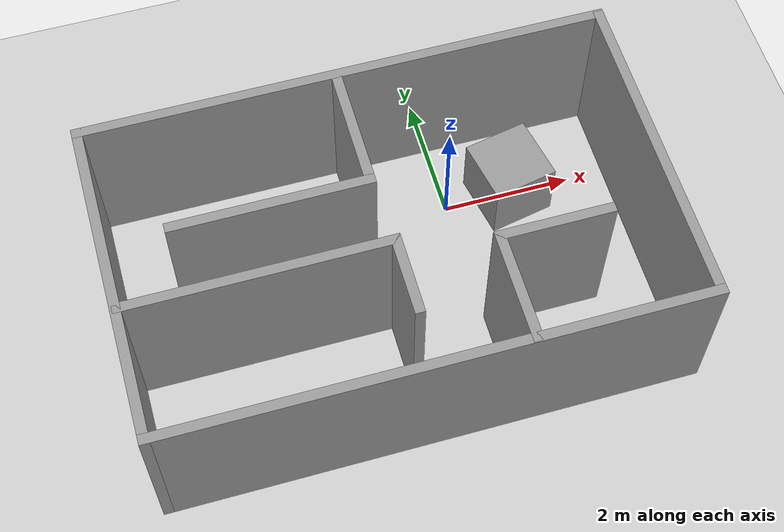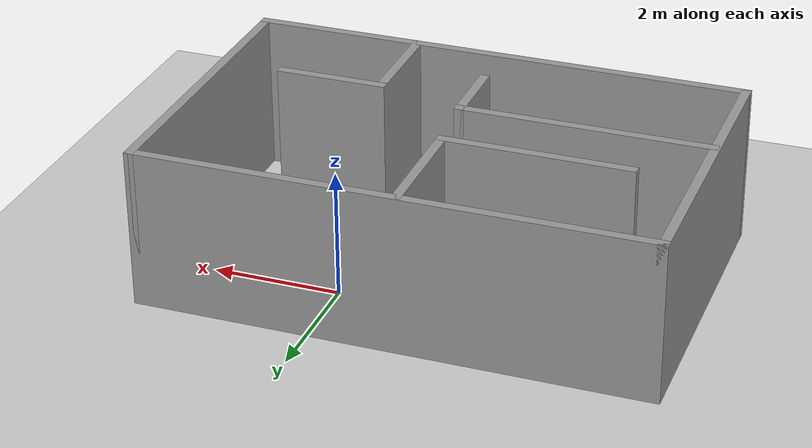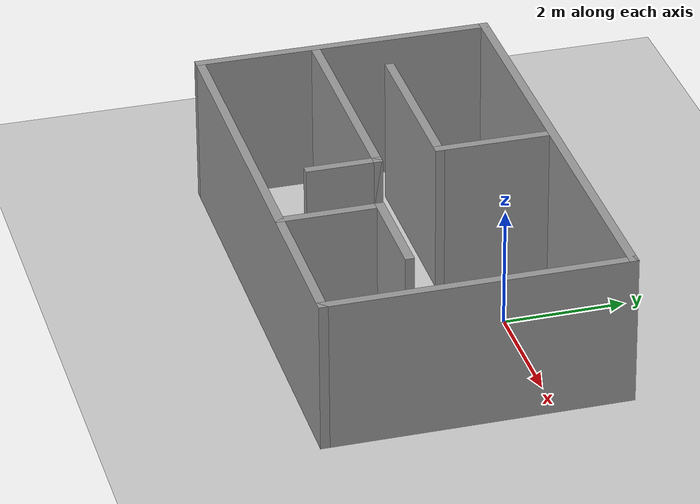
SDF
<sdf version="1.7">
 <world name="default">
  <light name="sun" type="directional">
   <pose>0 0 10 0 -0 0</pose>
   <diffuse>0.8 0.8 0.8 1</diffuse>
   <specular>0.2 0.2 0.2 1</specular>
   <attenuation>
    <range>1000</range>
    <constant>0.9</constant>
    <linear>0.01</linear>
    <quadratic>0.001</quadratic>
   </attenuation>
   <direction>-0.5 0.1 -0.9</direction>
   <spot><inner_angle>0</inner_angle><outer_angle>0</outer_angle><falloff>0</falloff></spot>
  </light>
  <model name="ground_plane">
   <static>1</static>
   <link name="link">
    <collision name="collision">
     <geometry><plane><normal>0 0 1</normal><size>100 100</size></plane></geometry>
     <surface>
      <contact><collide_bitmask>65535</collide_bitmask></contact>
      <friction><ode><mu>100</mu><mu2>50</mu2></ode></friction>
     </surface>
    </collision>
    <visual name="visual">
     <cast_shadows>0</cast_shadows>
     <geometry><plane><normal>0 0 1</normal><size>100 100</size></plane></geometry>
     <material>
      <script><uri>file://media/materials/scripts/gazebo.material</uri><name>Gazebo/Grey</name></script>
     </material>
    </visual>
   </link>
  </model>
  <gravity>0 0 -9.8</gravity>
  <magnetic_field>6e-06 2.3e-05 -4.2e-05</magnetic_field>
  <atmosphere type="adiabatic"/>
  <physics type="ode">
   <max_step_size>0.001</max_step_size>
   <real_time_factor>1</real_time_factor>
   <real_time_update_rate>1000</real_time_update_rate>
  </physics>
  <scene><ambient>0.4 0.4 0.4 1</ambient><background>0.7 0.7 0.7 1</background><shadows>1</shadows></scene>
  <audio><device>default</device></audio>
  <spherical_coordinates>
   <surface_model>EARTH_WGS84</surface_model>
   <latitude_deg>0</latitude_deg>
   <longitude_deg>0</longitude_deg>
   <elevation>0</elevation>
   <heading_deg>0</heading_deg>
  </spherical_coordinates>
  <model name="room">
   <pose>-1.2655 -0.198278 0 0 -0 0</pose>
   <link name="Wall_10">
    <collision name="Wall_10_Collision">
     <geometry><box><size>4 0.15 2.5</size></box></geometry>
     <pose>0 0 1.25 0 -0 0</pose>
    </collision>
    <visual name="Wall_10_Visual">
     <pose>0 0 1.25 0 -0 0</pose>
     <geometry><box><size>4 0.15 2.5</size></box></geometry>
     <material>
      <script><uri>file://media/materials/scripts/gazebo.material</uri><name>Gazebo/Grey</name></script>
      <ambient>1 1 1 1</ambient>
     </material>
     <meta><layer>0</layer></meta>
    </visual>
    <pose>-1.97 -1.5125 0 0 -0 0</pose>
   </link>
   <link name="Wall_11">
    <collision name="Wall_11_Collision">
     <geometry><box><size>1.25 0.15 2.5</size></box></geometry>
     <pose>0 0 1.25 0 -0 0</pose>
    </collision>
    <visual name="Wall_11_Visual">
     <pose>0 0 1.25 0 -0 0</pose>
     <geometry><box><size>1.25 0.15 2.5</size></box></geometry>
     <material>
      <script><uri>file://media/materials/scripts/gazebo.material</uri><name>Gazebo/Grey</name></script>
      <ambient>1 1 1 1</ambient>
     </material>
     <meta><layer>0</layer></meta>
    </visual>
    <pose>-0.045 -2.0625 0 0 -0 -1.5708</pose>
   </link>
   <link name="Wall_13">
    <collision name="Wall_13_Collision">
     <geometry><box><size>2 0.15 2.5</size></box></geometry>
     <pose>0 0 1.25 0 -0 0</pose>
    </collision>
    <visual name="Wall_13_Visual">
     <pose>0 0 1.25 0 -0 0</pose>
     <geometry><box><size>2 0.15 2.5</size></box></geometry>
     <material>
      <script><uri>file://media/materials/scripts/gazebo.material</uri><name>Gazebo/Grey</name></script>
      <ambient>1 1 1 1</ambient>
     </material>
     <meta><layer>0</layer></meta>
    </visual>
    <pose>-0.125 0.4425 0 0 -0 -1.5708</pose>
   </link>
   <link name="Wall_14">
    <collision name="Wall_14_Collision">
     <geometry><box><size>3 0.15 2.5</size></box></geometry>
     <pose>0 0 1.25 0 -0 0</pose>
    </collision>
    <visual name="Wall_14_Visual">
     <pose>0 0 1.25 0 -0 0</pose>
     <geometry><box><size>3 0.15 2.5</size></box></geometry>
     <material>
      <script><uri>file://media/materials/scripts/gazebo.material</uri><name>Gazebo/Grey</name></script>
      <ambient>1 1 1 1</ambient>
     </material>
     <meta><layer>0</layer></meta>
    </visual>
    <pose>-1.55 -0.4825 0 0 -0 3.14159</pose>
   </link>
   <link name="Wall_16">
    <collision name="Wall_16_Collision">
     <geometry><box><size>1.75 0.15 2.5</size></box></geometry>
     <pose>0 0 1.25 0 -0 0</pose>
    </collision>
    <visual name="Wall_16_Visual">
     <pose>0 0 1.25 0 -0 0</pose>
     <geometry><box><size>1.75 0.15 2.5</size></box></geometry>
     <material>
      <script><uri>file://media/materials/scripts/gazebo.material</uri><name>Gazebo/Grey</name></script>
      <ambient>1 1 1 1</ambient>
     </material>
     <meta><layer>0</layer></meta>
    </visual>
    <pose>1.335 -2.6425 0 0 -0 1.5708</pose>
   </link>
   <link name="Wall_17">
    <collision name="Wall_17_Collision">
     <geometry><box><size>1.75 0.15 2.5</size></box></geometry>
     <pose>0 0 1.25 0 -0 0</pose>
    </collision>
    <visual name="Wall_17_Visual">
     <pose>0 0 1.25 0 -0 0</pose>
     <geometry><box><size>1.75 0.15 2.5</size></box></geometry>
     <material>
      <script><uri>file://media/materials/scripts/gazebo.material</uri><name>Gazebo/Grey</name></script>
      <ambient>1 1 1 1</ambient>
     </material>
     <meta><layer>0</layer></meta>
    </visual>
    <pose>2.135 -1.8425 0 0 -0 0</pose>
   </link>
   <link name="Wall_5">
    <collision name="Wall_5_Collision">
     <geometry><box><size>8 0.15 2.5</size></box></geometry>
     <pose>0 0 1.25 0 -0 0</pose>
    </collision>
    <visual name="Wall_5_Visual">
     <pose>0 0 1.25 0 -0 0</pose>
     <geometry><box><size>8 0.15 2.5</size></box></geometry>
     <material>
      <script><uri>file://media/materials/scripts/gazebo.material</uri><name>Gazebo/Grey</name></script>
      <ambient>1 1 1 1</ambient>
     </material>
     <meta><layer>0</layer></meta>
    </visual>
    <pose>0 1.3975 0 0 -0 0</pose>
   </link>
   <link name="Wall_6">
    <collision name="Wall_6_Collision">
     <geometry><box><size>5 0.15 2.5</size></box></geometry>
     <pose>0 0 1.25 0 -0 0</pose>
    </collision>
    <visual name="Wall_6_Visual">
     <pose>0 0 1.25 0 -0 0</pose>
     <geometry><box><size>5 0.15 2.5</size></box></geometry>
     <material>
      <script><uri>file://media/materials/scripts/gazebo.material</uri><name>Gazebo/Grey</name></script>
      <ambient>1 1 1 1</ambient>
     </material>
     <meta><layer>0</layer></meta>
    </visual>
    <pose>3.925 -1.0275 0 0 -0 -1.5708</pose>
   </link>
   <link name="Wall_7">
    <collision name="Wall_7_Collision">
     <geometry><box><size>8 0.15 2.5</size></box></geometry>
     <pose>0 0 1.25 0 -0 0</pose>
    </collision>
    <visual name="Wall_7_Visual">
     <pose>0 0 1.25 0 -0 0</pose>
     <geometry><box><size>8 0.15 2.5</size></box></geometry>
     <material>
      <script><uri>file://media/materials/scripts/gazebo.material</uri><name>Gazebo/Grey</name></script>
      <ambient>1 1 1 1</ambient>
     </material>
     <meta><layer>0</layer></meta>
    </visual>
    <pose>0 -3.4525 0 0 -0 3.14159</pose>
   </link>
   <link name="Wall_8">
    <collision name="Wall_8_Collision">
     <geometry><box><size>5 0.15 2.5</size></box></geometry>
     <pose>0 0 1.25 0 -0 0</pose>
    </collision>
    <visual name="Wall_8_Visual">
     <pose>0 0 1.25 0 -0 0</pose>
     <geometry><box><size>5 0.15 2.5</size></box></geometry>
     <material>
      <script><uri>file://media/materials/scripts/gazebo.material</uri><name>Gazebo/Grey</name></script>
      <ambient>1 1 1 1</ambient>
     </material>
     <meta><layer>0</layer></meta>
    </visual>
    <pose>-3.925 -1.0275 0 0 -0 1.5708</pose>
   </link>
   <static>1</static>
  </model>
  <model name="unit_box">
   <pose>0.999997 2e-06 0.499998 -4e-06 -1e-06 0.192938</pose>
   <link name="link">
    <inertial>
     <mass>1</mass>
     <inertia>
      <ixx>0.166667</ixx>
      <ixy>0</ixy>
      <ixz>0</ixz>
      <iyy>0.166667</iyy>
      <iyz>0</iyz>
      <izz>0.166667</izz>
     </inertia>
    </inertial>
    <collision name="collision"><geometry><box><size>1 1 1</size></box></geometry></collision>
    <visual name="visual">
     <geometry><box><size>1 1 1</size></box></geometry>
     <material>
      <script><name>Gazebo/Grey</name><uri>file://media/materials/scripts/gazebo.material</uri></script>
     </material>
    </visual>
   </link>
  </model>
 </world>
</sdf>
